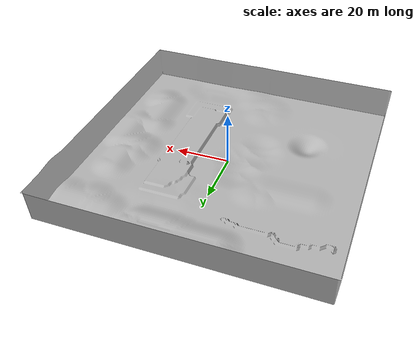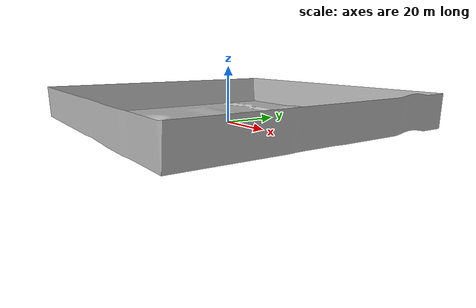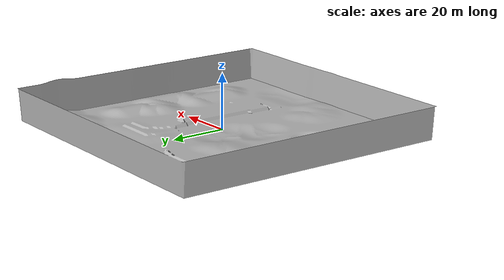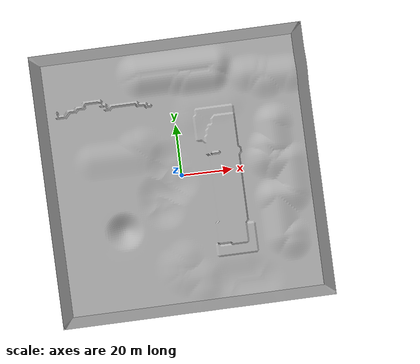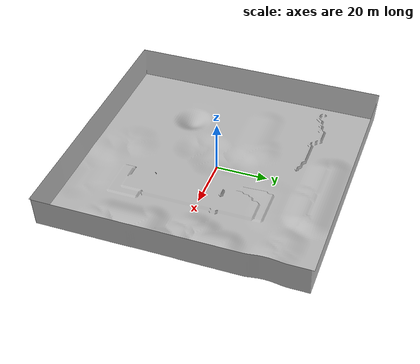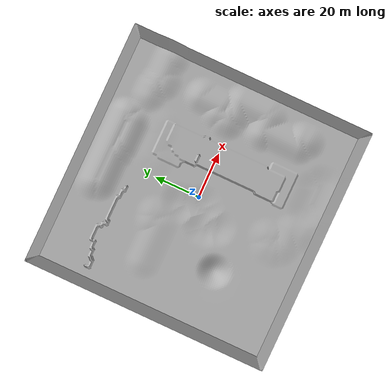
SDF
<?xml version="1.0" ?>
<sdf version="1.5">
  <model name="terrain_1">
    <pose>0 0 0 0 0 0</pose>
    <static>true</static>
    <link name="body">
      <visual name="visual">
        <geometry>
          <mesh><uri>media/Easy_world_1.dae</uri></mesh>
        </geometry>
	<material>
          <script>
            <uri>media/scripts</uri>
            <uri>media/Textures</uri>
            <name>RepeatedGrass/Diffuse</name>
          </script>
        </material>
      </visual>
      <collision name="collision">
        <geometry>
          <mesh><uri>media/Easy_world_1.dae</uri></mesh>
        </geometry>
      </collision>
    </link>
  </model>
</sdf>
